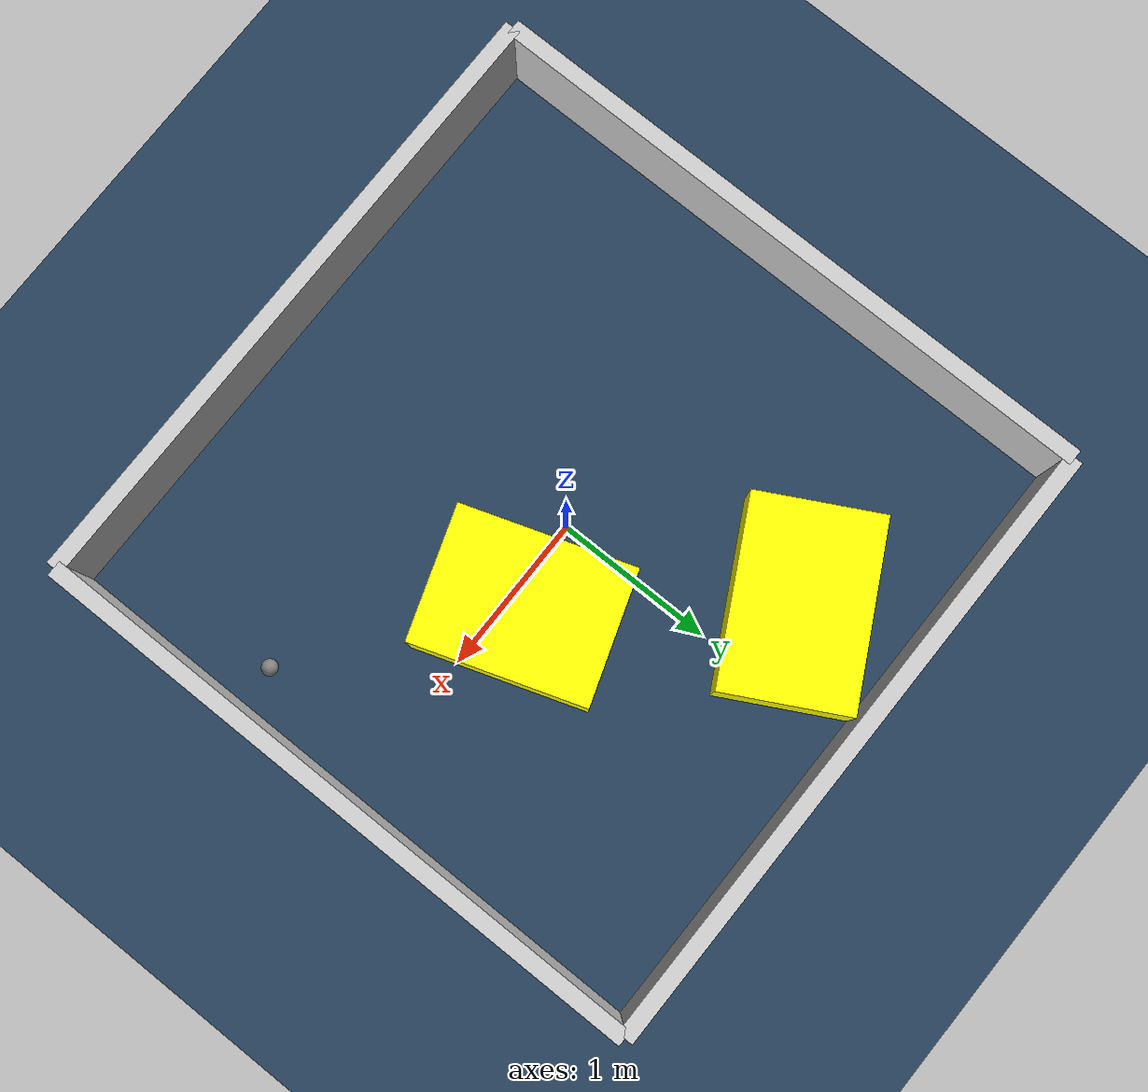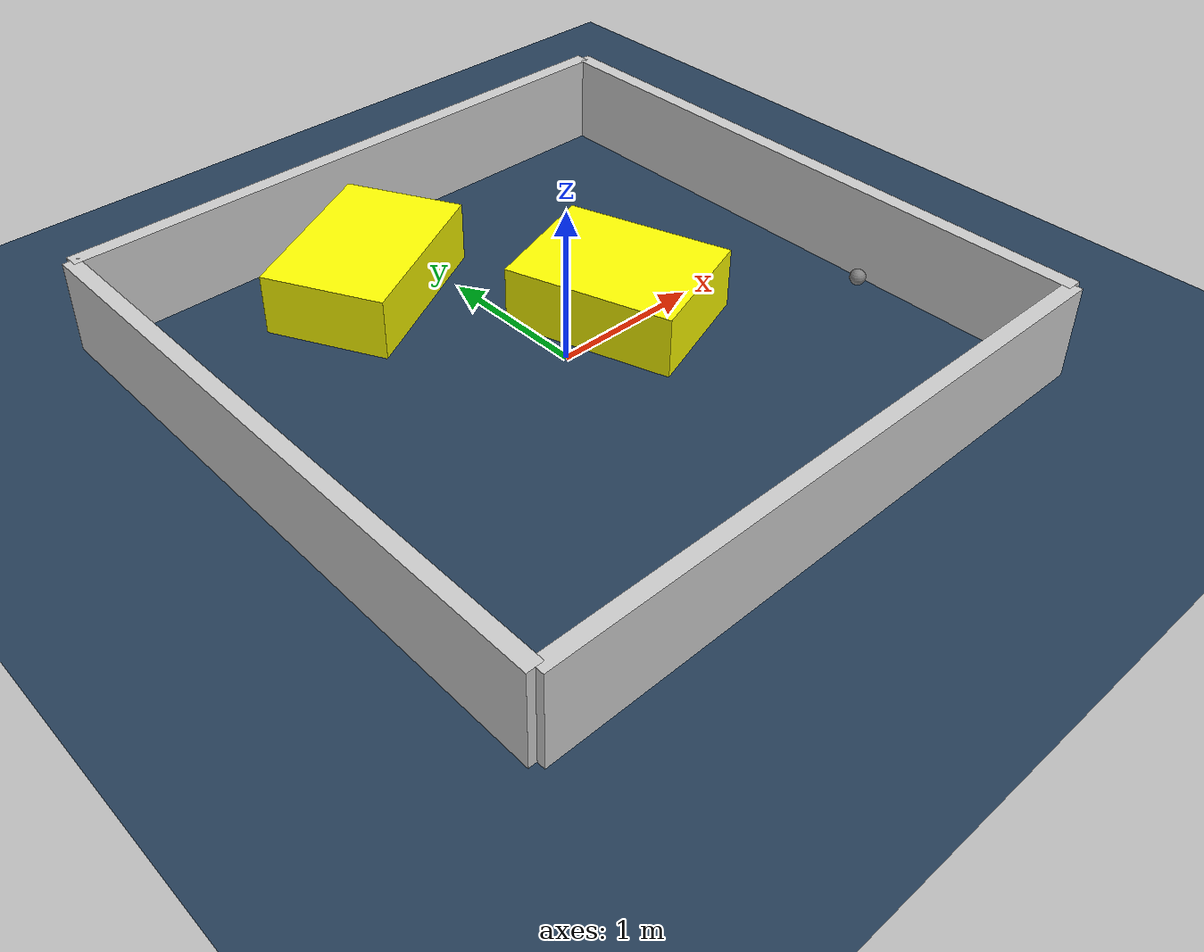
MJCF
<?xml version="1.0" ?>
<mujoco model="generated_environment">
  <option timestep="0.01" integrator="RK4" cone="elliptic"/>
  <default>
    <geom density="1"/>
  </default>
  <asset>
    <texture builtin="gradient" height="3072" rgb1="0.3 0.5 0.7" rgb2="0 0 0" type="skybox" width="512"/>
    <texture builtin="checker" height="300" mark="edge" markrgb="0.8 0.8 0.8" name="groundplane" rgb1="0.2 0.3 0.4" rgb2="0.1 0.2 0.3" type="2d" width="300"/>
    <material name="groundplane" reflectance="0.2" texrepeat="5 5" texture="groundplane" texuniform="true"/>
    <material name="robot" rgba="0.0 1.0 0.0 1"/>
  </asset>
  <worldbody>
    <light dir="0 0 -1" directional="true" pos="0 0 1.5"/>
    <geom condim="4" friction="1.0 0.005 0.001" material="groundplane" name="floor" size="0 0 0.05" type="plane"/>
    <body name="walls">
      <geom name="wall_1" condim="4" pos="-2.0 0.0 0.3" rgba="0.800000011920929 0.800000011920929 0.800000011920929 1.0" size="0.05 2.0 0.3" type="box"/>
      <geom name="wall_2" condim="4" pos="2.0 0.0 0.3" rgba="0.800000011920929 0.800000011920929 0.800000011920929 1.0" size="0.05 2.0 0.3" type="box"/>
      <geom name="wall_3" condim="4" pos="0.0 -2.0 0.3" rgba="0.800000011920929 0.800000011920929 0.800000011920929 1.0" size="2.0 0.05 0.3" type="box"/>
      <geom name="wall_4" condim="4" pos="0.0 2.0 0.3" rgba="0.800000011920929 0.800000011920929 0.800000011920929 1.0" size="2.0 0.05 0.3" type="box"/>
    </body>
    <body name="robot">
      <joint name="joint_x" type="slide" pos="0 0 0" axis="1 0 0"/>
      <joint name="joint_y" type="slide" pos="0 0 0" axis="0 1 0"/>
      <geom name="robot" type="sphere" pos="1.6915996439112124 -0.7935020164083638 0.2" size="0.05" mass="5." friction="1.0 0.005 0.0001" condim="4"/>
      <site name="sensor_ball"/>
    </body>
    <body name="obstacle_1_movable">
      <geom name="obstacle_1_movable" condim="4" pos="0.5332815925007761 0.11423250400597063 0.2" euler="0 0 198.72123564087138" friction="1.0 0.005 0.001" rgba="1 1 0 1" size="0.4187820748863293 0.545169609454814 0.2" type="box" mass="0.1"/>
      <joint type="free"/>
    </body>
    <body name="obstacle_2_movable">
      <geom name="obstacle_2_movable" condim="4" pos="-0.4548310518031956 1.3254387728907053 0.2" euler="0 0 208.04130482417858" friction="1.0 0.005 0.001" rgba="1 1 0 1" size="0.5783154354154181 0.39826591688218016 0.2" type="box" mass="0.1"/>
      <joint type="free"/>
    </body>
  </worldbody>
  <actuator>
    <motor name="actuator_x" joint="joint_x" gear="1" ctrlrange="-1 1"/>
    <motor name="actuator_y" joint="joint_y" gear="1" ctrlrange="-1 1"/>
  </actuator>
</mujoco>
